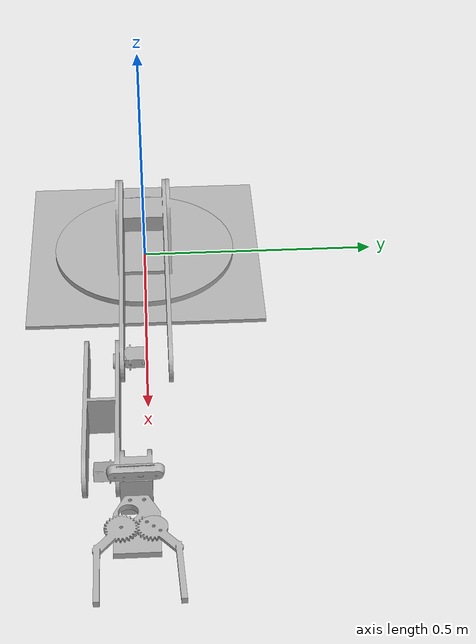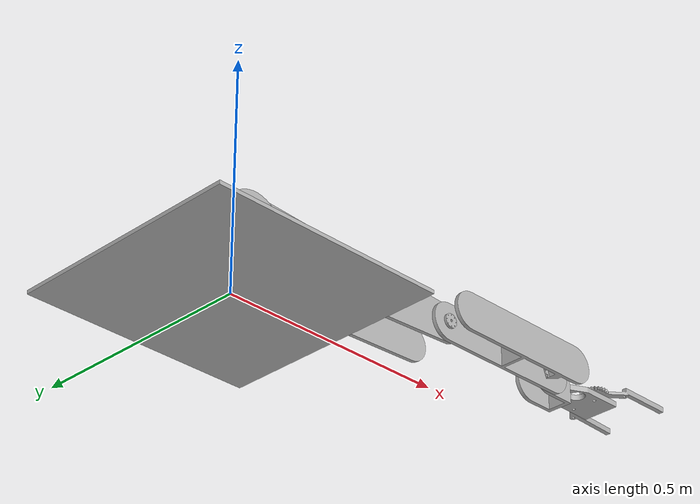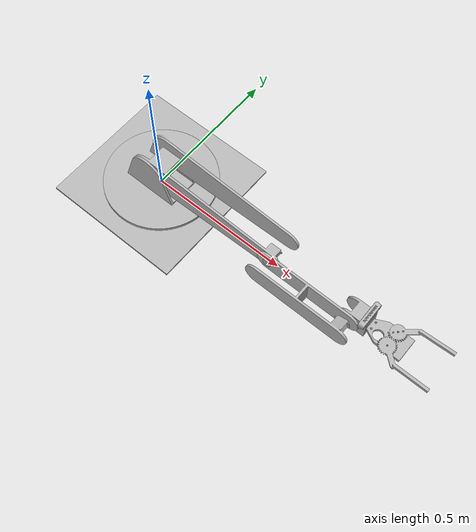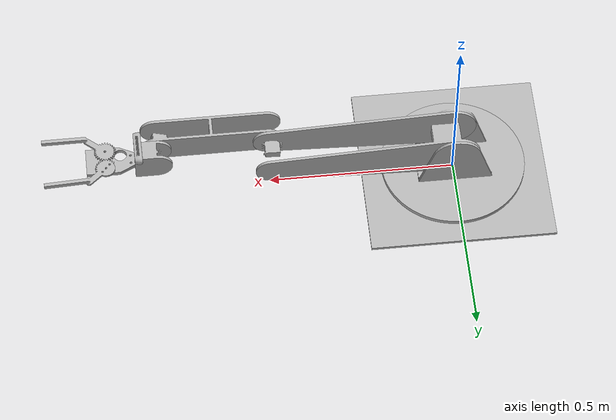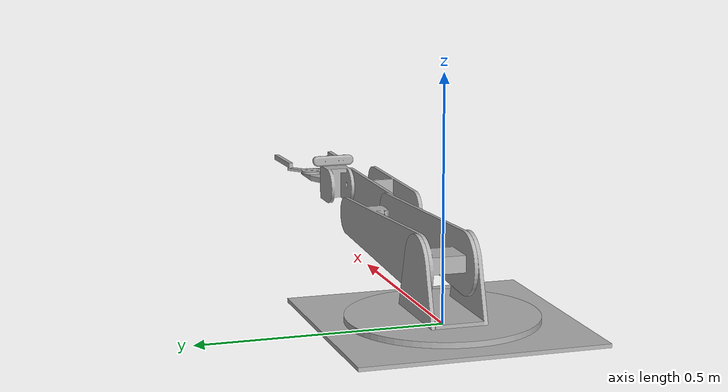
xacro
<?xml version="1.0" ?>
<robot name="fruit_harvester" xmlns:xacro="http://www.ros.org/wiki/xacro">

<xacro:include filename="$(find fruit_harvester_description)/urdf/materials.xacro" />
<xacro:include filename="$(find fruit_harvester_description)/urdf/fruit_harvester.trans" />
<xacro:include filename="$(find fruit_harvester_description)/urdf/fruit_harvester.gazebo" />
<link name="base_link">
  <inertial>
    <origin xyz="-2.141483605028195e-16 -3.6379137549613626e-17 0.0040000000000000105" rpy="0 0 0"/>
    <mass value="14.300000000000002"/>
    <inertia ixx="0.297993" iyy="0.297993" izz="0.595833" ixy="0.0" iyz="0.0" ixz="-0.0"/>
  </inertial>
  <visual>
    <origin xyz="0 0 0" rpy="0 0 0"/>
    <geometry>
      <mesh filename="package://fruit_harvester_description/meshes/base_link.stl" scale="0.001 0.001 0.001"/>
    </geometry>
    <material name="silver"/>
  </visual>
  <collision>
    <origin xyz="0 0 0" rpy="0 0 0"/>
    <geometry>
      <mesh filename="package://fruit_harvester_description/meshes/base_link.stl" scale="0.001 0.001 0.001"/>
    </geometry>
  </collision>
</link>

<link name="holder__1">
  <inertial>
    <origin xyz="5.5951482468685754e-06 2.1636982916106718e-06 0.021279248953684275" rpy="0 0 0"/>
    <mass value="14.078041686781889"/>
    <inertia ixx="0.123973" iyy="0.12451" izz="0.212985" ixy="2e-06" iyz="1e-06" ixz="2e-06"/>
  </inertial>
  <visual>
    <origin xyz="0.0 0.0 -0.008" rpy="0 0 0"/>
    <geometry>
      <mesh filename="package://fruit_harvester_description/meshes/holder__1.stl" scale="0.001 0.001 0.001"/>
    </geometry>
    <material name="silver"/>
  </visual>
  <collision>
    <origin xyz="0.0 0.0 -0.008" rpy="0 0 0"/>
    <geometry>
      <mesh filename="package://fruit_harvester_description/meshes/holder__1.stl" scale="0.001 0.001 0.001"/>
    </geometry>
  </collision>
</link>

<link name="grip2_1">
  <inertial>
    <origin xyz="0.05364907931835394 -0.021775092276295163 0.007117236322119358" rpy="0 0 0"/>
    <mass value="0.08498904911563737"/>
    <inertia ixx="4e-05" iyy="0.000276" izz="0.000311" ixy="7.8e-05" iyz="6e-06" ixz="-1.9e-05"/>
  </inertial>
  <visual>
    <origin xyz="-0.937608 0.04828 -0.126" rpy="0 0 0"/>
    <geometry>
      <mesh filename="package://fruit_harvester_description/meshes/grip2_1.stl" scale="0.001 0.001 0.001"/>
    </geometry>
    <material name="silver"/>
  </visual>
  <collision>
    <origin xyz="-0.937608 0.04828 -0.126" rpy="0 0 0"/>
    <geometry>
      <mesh filename="package://fruit_harvester_description/meshes/grip2_1.stl" scale="0.001 0.001 0.001"/>
    </geometry>
  </collision>
</link>

<link name="grip1_1">
  <inertial>
    <origin xyz="0.056280940296917104 0.024051327350769924 0.007305101642074985" rpy="0 0 0"/>
    <mass value="0.2152423048382853"/>
    <inertia ixx="0.000116" iyy="0.000682" izz="0.000786" ixy="-0.000222" iyz="-1.8e-05" ixz="-4.7e-05"/>
  </inertial>
  <visual>
    <origin xyz="-0.937608 -0.00572 -0.126" rpy="0 0 0"/>
    <geometry>
      <mesh filename="package://fruit_harvester_description/meshes/grip1_1.stl" scale="0.001 0.001 0.001"/>
    </geometry>
    <material name="silver"/>
  </visual>
  <collision>
    <origin xyz="-0.937608 -0.00572 -0.126" rpy="0 0 0"/>
    <geometry>
      <mesh filename="package://fruit_harvester_description/meshes/grip1_1.stl" scale="0.001 0.001 0.001"/>
    </geometry>
  </collision>
</link>

<link name="cam_1">
  <inertial>
    <origin xyz="-0.19905808410448445 -1.296144578486576 1.5456263497834613" rpy="0 0 0"/>
    <mass value="0.32739564469380616"/>
    <inertia ixx="0.000252" iyy="2.4e-05" izz="0.00025" ixy="2e-06" iyz="0.0" ixz="0.0"/>
  </inertial>
  <visual>
    <origin xyz="-1.04719 -1.274 1.374455" rpy="0 0 0"/>
    <geometry>
      <mesh filename="package://fruit_harvester_description/meshes/cam_1.stl" scale="0.001 0.001 0.001"/>
    </geometry>
    <material name="silver"/>
  </visual>
  <collision>
    <origin xyz="-1.04719 -1.274 1.374455" rpy="0 0 0"/>
    <geometry>
      <mesh filename="package://fruit_harvester_description/meshes/cam_1.stl" scale="0.001 0.001 0.001"/>
    </geometry>
  </collision>
</link>

<link name="grip_base_1">
  <inertial>
    <origin xyz="0.07320818005315854 0.0015701009662208061 1.1324274851176597e-14" rpy="0 0 0"/>
    <mass value="0.7312652454578921"/>
    <inertia ixx="0.000377" iyy="0.000942" izz="0.001302" ixy="4.1e-05" iyz="0.0" ixz="-0.0"/>
  </inertial>
  <visual>
    <origin xyz="-0.86 0.02195 -0.12" rpy="0 0 0"/>
    <geometry>
      <mesh filename="package://fruit_harvester_description/meshes/grip_base_1.stl" scale="0.001 0.001 0.001"/>
    </geometry>
    <material name="silver"/>
  </visual>
  <collision>
    <origin xyz="-0.86 0.02195 -0.12" rpy="0 0 0"/>
    <geometry>
      <mesh filename="package://fruit_harvester_description/meshes/grip_base_1.stl" scale="0.001 0.001 0.001"/>
    </geometry>
  </collision>
</link>

<link name="link_1_1">
  <inertial>
    <origin xyz="0.2046453317718993 0.04905444059427462 -0.0003731414926893689" rpy="0 0 0"/>
    <mass value="8.14858833077929"/>
    <inertia ixx="0.022502" iyy="0.25306" izz="0.261723" ixy="0.002387" iyz="0.000318" ixz="0.001677"/>
  </inertial>
  <visual>
    <origin xyz="-0.0 0.04995 -0.12" rpy="0 0 0"/>
    <geometry>
      <mesh filename="package://fruit_harvester_description/meshes/link_1_1.stl" scale="0.001 0.001 0.001"/>
    </geometry>
    <material name="silver"/>
  </visual>
  <collision>
    <origin xyz="-0.0 0.04995 -0.12" rpy="0 0 0"/>
    <geometry>
      <mesh filename="package://fruit_harvester_description/meshes/link_1_1.stl" scale="0.001 0.001 0.001"/>
    </geometry>
  </collision>
</link>

<link name="link_2_1">
  <inertial>
    <origin xyz="0.15975993800658017 -0.03301644370808394 -0.00020253357023874985" rpy="0 0 0"/>
    <mass value="3.724745482250577"/>
    <inertia ixx="0.004679" iyy="0.04153" izz="0.042556" ixy="-0.000331" iyz="4e-06" ixz="9.1e-05"/>
  </inertial>
  <visual>
    <origin xyz="-0.5 0.04995 -0.12" rpy="0 0 0"/>
    <geometry>
      <mesh filename="package://fruit_harvester_description/meshes/link_2_1.stl" scale="0.001 0.001 0.001"/>
    </geometry>
    <material name="silver"/>
  </visual>
  <collision>
    <origin xyz="-0.5 0.04995 -0.12" rpy="0 0 0"/>
    <geometry>
      <mesh filename="package://fruit_harvester_description/meshes/link_2_1.stl" scale="0.001 0.001 0.001"/>
    </geometry>
  </collision>
</link>

<link name="link_3_1">
  <inertial>
    <origin xyz="0.022708698211290734 0.027591903502357792 0.004082924140336397" rpy="0 0 0"/>
    <mass value="1.2255204125736512"/>
    <inertia ixx="0.001242" iyy="0.00165" izz="0.001516" ixy="-1.1e-05" iyz="-2e-06" ixz="-1.1e-05"/>
  </inertial>
  <visual>
    <origin xyz="-0.8 0.04995 -0.12" rpy="0 0 0"/>
    <geometry>
      <mesh filename="package://fruit_harvester_description/meshes/link_3_1.stl" scale="0.001 0.001 0.001"/>
    </geometry>
    <material name="silver"/>
  </visual>
  <collision>
    <origin xyz="-0.8 0.04995 -0.12" rpy="0 0 0"/>
    <geometry>
      <mesh filename="package://fruit_harvester_description/meshes/link_3_1.stl" scale="0.001 0.001 0.001"/>
    </geometry>
  </collision>
</link>

<joint name="Rev179" type="continuous">
  <origin xyz="0.0 0.0 0.008" rpy="0 0 0"/>
  <parent link="base_link"/>
  <child link="holder__1"/>
  <axis xyz="-0.0 0.0 1.0"/>
</joint>

<joint name="Rev192" type="continuous">
  <origin xyz="0.077608 -0.02633 0.006" rpy="0 0 0"/>
  <parent link="grip_base_1"/>
  <child link="grip2_1"/>
  <axis xyz="0.0 -0.0 -1.0"/>
</joint>

<joint name="Rev193" type="continuous">
  <origin xyz="0.077608 0.02767 0.006" rpy="0 0 0"/>
  <parent link="grip_base_1"/>
  <child link="grip1_1"/>
  <axis xyz="0.0 -0.0 -1.0"/>
</joint>

<joint name="Rigid199" type="fixed">
  <origin xyz="0.24719 1.32395 -1.494455" rpy="0 0 0"/>
  <parent link="link_3_1"/>
  <child link="cam_1"/>
</joint>

<joint name="Rigid203" type="fixed">
  <origin xyz="0.06 0.028 0.0" rpy="0 0 0"/>
  <parent link="link_3_1"/>
  <child link="grip_base_1"/>
</joint>

<joint name="Rev206" type="continuous">
  <origin xyz="0.0 -0.04995 0.112" rpy="0 0 0"/>
  <parent link="holder__1"/>
  <child link="link_1_1"/>
  <axis xyz="0.0 -1.0 0.0"/>
</joint>

<joint name="Rev207" type="continuous">
  <origin xyz="0.5 0.0 0.0" rpy="0 0 0"/>
  <parent link="link_1_1"/>
  <child link="link_2_1"/>
  <axis xyz="-0.0 -1.0 0.0"/>
</joint>

<joint name="Rev208" type="continuous">
  <origin xyz="0.3 0.0 0.0" rpy="0 0 0"/>
  <parent link="link_2_1"/>
  <child link="link_3_1"/>
  <axis xyz="-0.0 -1.0 0.0"/>
</joint>

</robot>

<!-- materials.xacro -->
<robot name="fruit_harvester" xmlns:xacro="http://www.ros.org/wiki/xacro" >

<material name="silver">
  <color rgba="0.700 0.700 0.700 1.000"/>
</material>

</robot>

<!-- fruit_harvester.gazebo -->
<robot name="fruit_harvester" xmlns:xacro="http://www.ros.org/wiki/xacro" >

<xacro:property name="body_color" value="Gazebo/Silver" />

<gazebo>
  <plugin name="control" filename="libgazebo_ros_control.so"/>
</gazebo>
<gazebo reference="base_link">
  <material>${body_color}</material>
  <mu1>0.2</mu1>
  <mu2>0.2</mu2>
  <selfCollide>true</selfCollide>
  <gravity>true</gravity>
</gazebo>

<gazebo reference="holder__1">
  <material>${body_color}</material>
  <mu1>0.2</mu1>
  <mu2>0.2</mu2>
  <selfCollide>true</selfCollide>
</gazebo>

<gazebo reference="grip2_1">
  <material>${body_color}</material>
  <mu1>0.2</mu1>
  <mu2>0.2</mu2>
  <selfCollide>true</selfCollide>
</gazebo>

<gazebo reference="grip1_1">
  <material>${body_color}</material>
  <mu1>0.2</mu1>
  <mu2>0.2</mu2>
  <selfCollide>true</selfCollide>
</gazebo>

<gazebo reference="cam_1">
  <material>${body_color}</material>
  <mu1>0.2</mu1>
  <mu2>0.2</mu2>
  <selfCollide>true</selfCollide>
</gazebo>

<gazebo reference="grip_base_1">
  <material>${body_color}</material>
  <mu1>0.2</mu1>
  <mu2>0.2</mu2>
  <selfCollide>true</selfCollide>
</gazebo>

<gazebo reference="link_1_1">
  <material>${body_color}</material>
  <mu1>0.2</mu1>
  <mu2>0.2</mu2>
  <selfCollide>true</selfCollide>
</gazebo>

<gazebo reference="link_2_1">
  <material>${body_color}</material>
  <mu1>0.2</mu1>
  <mu2>0.2</mu2>
  <selfCollide>true</selfCollide>
</gazebo>

<gazebo reference="link_3_1">
  <material>${body_color}</material>
  <mu1>0.2</mu1>
  <mu2>0.2</mu2>
  <selfCollide>true</selfCollide>
</gazebo>

</robot>
